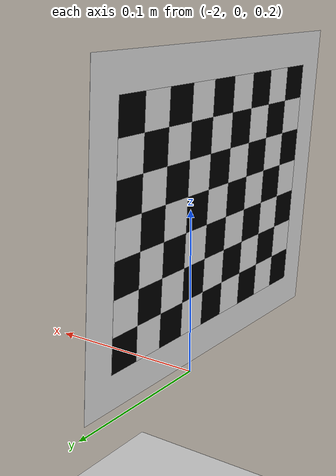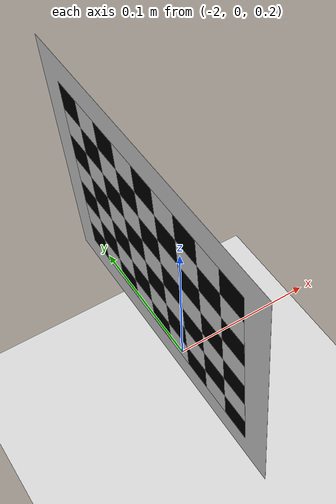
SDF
<sdf version="1.7">
 <world name="default">
  <plugin name="gazebo_ros_state" filename="libgazebo_ros_state.so">
   <ros><namespace>/gazebo</namespace></ros>
   <update_rate>1.0</update_rate>
  </plugin>
  <model name="ground_plane">
   <static>1</static>
   <link name="link">
    <collision name="collision">
     <geometry><plane><normal>0 0 1</normal><size>100 100</size></plane></geometry>
     <surface><friction><ode><mu>100</mu><mu2>50</mu2></ode></friction></surface>
    </collision>
    <visual name="visual">
     <cast_shadows>0</cast_shadows>
     <geometry><plane><normal>0 0 1</normal><size>100 100</size></plane></geometry>
     <material>
      <script><uri>file://media/materials/scripts/gazebo.material</uri><name>Gazebo/Grey</name></script>
     </material>
    </visual>
   </link>
  </model>
  <light name="sun" type="directional">
   <pose>0 0 10 0 -0 0</pose>
   <diffuse>0.8 0.8 0.8 1</diffuse>
   <specular>0.2 0.2 0.2 1</specular>
   <attenuation>
    <range>1000</range>
    <constant>0.9</constant>
    <linear>0.01</linear>
    <quadratic>0.001</quadratic>
   </attenuation>
   <direction>-0.5 0.1 -0.9</direction>
   <spot><inner_angle>0</inner_angle><outer_angle>0</outer_angle><falloff>0</falloff></spot>
  </light>
  <scene><shadows>0</shadows><ambient>0.4 0.4 0.4 1</ambient><background>0.7 0.7 0.7 1</background></scene>
  <physics type="ode">
   <real_time_update_rate>1000</real_time_update_rate>
   <max_step_size>0.001</max_step_size>
   <real_time_factor>1</real_time_factor>
   <ode>
    <solver>
     <type>quick</type>
     <iters>150</iters>
     <precon_iters>0</precon_iters>
     <sor>1.4</sor>
     <use_dynamic_moi_rescaling>1</use_dynamic_moi_rescaling>
    </solver>
    <constraints>
     <cfm>1e-05</cfm>
     <erp>0.2</erp>
     <contact_max_correcting_vel>2000</contact_max_correcting_vel>
     <contact_surface_layer>0.01</contact_surface_layer>
    </constraints>
   </ode>
  </physics>
  <gravity>0 0 -9.8</gravity>
  <magnetic_field>6e-06 2.3e-05 -4.2e-05</magnetic_field>
  <atmosphere type="adiabatic"/>
  <audio><device>default</device></audio>
  <spherical_coordinates>
   <surface_model>EARTH_WGS84</surface_model>
   <latitude_deg>0</latitude_deg>
   <longitude_deg>0</longitude_deg>
   <elevation>0</elevation>
   <heading_deg>0</heading_deg>
  </spherical_coordinates>
  <model name="checkerboard">
   <static>1</static>
   <link name="checkerboard_7_9_0_02_body">
    <visual name="checker_0_0">
     <pose>-0.06 -0.08 0 0 -0 0</pose>
     <geometry><box><size>0.02 0.02 0.0002</size></box></geometry>
     <material>
      <ambient>0 0 0 1</ambient>
      <diffuse>0 0 0 1</diffuse>
      <specular>0 0 0 1</specular>
      <emissive>0 0 0 1</emissive>
     </material>
    </visual>
    <visual name="checker_0_1">
     <pose>-0.06 -0.06 0 0 -0 0</pose>
     <geometry><box><size>0.02 0.02 0.0002</size></box></geometry>
     <material>
      <ambient>1 1 1 1</ambient>
      <diffuse>1 1 1 1</diffuse>
      <specular>1 1 1 1</specular>
      <emissive>1 1 1 1</emissive>
     </material>
    </visual>
    <visual name="checker_0_2">
     <pose>-0.06 -0.04 0 0 -0 0</pose>
     <geometry><box><size>0.02 0.02 0.0002</size></box></geometry>
     <material>
      <ambient>0 0 0 1</ambient>
      <diffuse>0 0 0 1</diffuse>
      <specular>0 0 0 1</specular>
      <emissive>0 0 0 1</emissive>
     </material>
    </visual>
    <visual name="checker_0_3">
     <pose>-0.06 -0.02 0 0 -0 0</pose>
     <geometry><box><size>0.02 0.02 0.0002</size></box></geometry>
     <material>
      <ambient>1 1 1 1</ambient>
      <diffuse>1 1 1 1</diffuse>
      <specular>1 1 1 1</specular>
      <emissive>1 1 1 1</emissive>
     </material>
    </visual>
    <visual name="checker_0_4">
     <pose>-0.06 0 0 0 -0 0</pose>
     <geometry><box><size>0.02 0.02 0.0002</size></box></geometry>
     <material>
      <ambient>0 0 0 1</ambient>
      <diffuse>0 0 0 1</diffuse>
      <specular>0 0 0 1</specular>
      <emissive>0 0 0 1</emissive>
     </material>
    </visual>
    <visual name="checker_0_5">
     <pose>-0.06 0.02 0 0 -0 0</pose>
     <geometry><box><size>0.02 0.02 0.0002</size></box></geometry>
     <material>
      <ambient>1 1 1 1</ambient>
      <diffuse>1 1 1 1</diffuse>
      <specular>1 1 1 1</specular>
      <emissive>1 1 1 1</emissive>
     </material>
    </visual>
    <visual name="checker_0_6">
     <pose>-0.06 0.04 0 0 -0 0</pose>
     <geometry><box><size>0.02 0.02 0.0002</size></box></geometry>
     <material>
      <ambient>0 0 0 1</ambient>
      <diffuse>0 0 0 1</diffuse>
      <specular>0 0 0 1</specular>
      <emissive>0 0 0 1</emissive>
     </material>
    </visual>
    <visual name="checker_0_7">
     <pose>-0.06 0.06 0 0 -0 0</pose>
     <geometry><box><size>0.02 0.02 0.0002</size></box></geometry>
     <material>
      <ambient>1 1 1 1</ambient>
      <diffuse>1 1 1 1</diffuse>
      <specular>1 1 1 1</specular>
      <emissive>1 1 1 1</emissive>
     </material>
    </visual>
    <visual name="checker_0_8">
     <pose>-0.06 0.08 0 0 -0 0</pose>
     <geometry><box><size>0.02 0.02 0.0002</size></box></geometry>
     <material>
      <ambient>0 0 0 1</ambient>
      <diffuse>0 0 0 1</diffuse>
      <specular>0 0 0 1</specular>
      <emissive>0 0 0 1</emissive>
     </material>
    </visual>
    <visual name="checker_1_0">
     <pose>-0.04 -0.08 0 0 -0 0</pose>
     <geometry><box><size>0.02 0.02 0.0002</size></box></geometry>
     <material>
      <ambient>1 1 1 1</ambient>
      <diffuse>1 1 1 1</diffuse>
      <specular>1 1 1 1</specular>
      <emissive>1 1 1 1</emissive>
     </material>
    </visual>
    <visual name="checker_1_1">
     <pose>-0.04 -0.06 0 0 -0 0</pose>
     <geometry><box><size>0.02 0.02 0.0002</size></box></geometry>
     <material>
      <ambient>0 0 0 1</ambient>
      <diffuse>0 0 0 1</diffuse>
      <specular>0 0 0 1</specular>
      <emissive>0 0 0 1</emissive>
     </material>
    </visual>
    <visual name="checker_1_2">
     <pose>-0.04 -0.04 0 0 -0 0</pose>
     <geometry><box><size>0.02 0.02 0.0002</size></box></geometry>
     <material>
      <ambient>1 1 1 1</ambient>
      <diffuse>1 1 1 1</diffuse>
      <specular>1 1 1 1</specular>
      <emissive>1 1 1 1</emissive>
     </material>
    </visual>
    <visual name="checker_1_3">
     <pose>-0.04 -0.02 0 0 -0 0</pose>
     <geometry><box><size>0.02 0.02 0.0002</size></box></geometry>
     <material>
      <ambient>0 0 0 1</ambient>
      <diffuse>0 0 0 1</diffuse>
      <specular>0 0 0 1</specular>
      <emissive>0 0 0 1</emissive>
     </material>
    </visual>
    <visual name="checker_1_4">
     <pose>-0.04 0 0 0 -0 0</pose>
     <geometry><box><size>0.02 0.02 0.0002</size></box></geometry>
     <material>
      <ambient>1 1 1 1</ambient>
      <diffuse>1 1 1 1</diffuse>
      <specular>1 1 1 1</specular>
      <emissive>1 1 1 1</emissive>
     </material>
    </visual>
    <visual name="checker_1_5">
     <pose>-0.04 0.02 0 0 -0 0</pose>
     <geometry><box><size>0.02 0.02 0.0002</size></box></geometry>
     <material>
      <ambient>0 0 0 1</ambient>
      <diffuse>0 0 0 1</diffuse>
      <specular>0 0 0 1</specular>
      <emissive>0 0 0 1</emissive>
     </material>
    </visual>
    <visual name="checker_1_6">
     <pose>-0.04 0.04 0 0 -0 0</pose>
     <geometry><box><size>0.02 0.02 0.0002</size></box></geometry>
     <material>
      <ambient>1 1 1 1</ambient>
      <diffuse>1 1 1 1</diffuse>
      <specular>1 1 1 1</specular>
      <emissive>1 1 1 1</emissive>
     </material>
    </visual>
    <visual name="checker_1_7">
     <pose>-0.04 0.06 0 0 -0 0</pose>
     <geometry><box><size>0.02 0.02 0.0002</size></box></geometry>
     <material>
      <ambient>0 0 0 1</ambient>
      <diffuse>0 0 0 1</diffuse>
      <specular>0 0 0 1</specular>
      <emissive>0 0 0 1</emissive>
     </material>
    </visual>
    <visual name="checker_1_8">
     <pose>-0.04 0.08 0 0 -0 0</pose>
     <geometry><box><size>0.02 0.02 0.0002</size></box></geometry>
     <material>
      <ambient>1 1 1 1</ambient>
      <diffuse>1 1 1 1</diffuse>
      <specular>1 1 1 1</specular>
      <emissive>1 1 1 1</emissive>
     </material>
    </visual>
    <visual name="checker_2_0">
     <pose>-0.02 -0.08 0 0 -0 0</pose>
     <geometry><box><size>0.02 0.02 0.0002</size></box></geometry>
     <material>
      <ambient>0 0 0 1</ambient>
      <diffuse>0 0 0 1</diffuse>
      <specular>0 0 0 1</specular>
      <emissive>0 0 0 1</emissive>
     </material>
    </visual>
    <visual name="checker_2_1">
     <pose>-0.02 -0.06 0 0 -0 0</pose>
     <geometry><box><size>0.02 0.02 0.0002</size></box></geometry>
     <material>
      <ambient>1 1 1 1</ambient>
      <diffuse>1 1 1 1</diffuse>
      <specular>1 1 1 1</specular>
      <emissive>1 1 1 1</emissive>
     </material>
    </visual>
    <visual name="checker_2_2">
     <pose>-0.02 -0.04 0 0 -0 0</pose>
     <geometry><box><size>0.02 0.02 0.0002</size></box></geometry>
     <material>
      <ambient>0 0 0 1</ambient>
      <diffuse>0 0 0 1</diffuse>
      <specular>0 0 0 1</specular>
      <emissive>0 0 0 1</emissive>
     </material>
    </visual>
    <visual name="checker_2_3">
     <pose>-0.02 -0.02 0 0 -0 0</pose>
     <geometry><box><size>0.02 0.02 0.0002</size></box></geometry>
     <material>
      <ambient>1 1 1 1</ambient>
      <diffuse>1 1 1 1</diffuse>
      <specular>1 1 1 1</specular>
      <emissive>1 1 1 1</emissive>
     </material>
    </visual>
    <visual name="checker_2_4">
     <pose>-0.02 0 0 0 -0 0</pose>
     <geometry><box><size>0.02 0.02 0.0002</size></box></geometry>
     <material>
      <ambient>0 0 0 1</ambient>
      <diffuse>0 0 0 1</diffuse>
      <specular>0 0 0 1</specular>
      <emissive>0 0 0 1</emissive>
     </material>
    </visual>
    <visual name="checker_2_5">
     <pose>-0.02 0.02 0 0 -0 0</pose>
     <geometry><box><size>0.02 0.02 0.0002</size></box></geometry>
     <material>
      <ambient>1 1 1 1</ambient>
      <diffuse>1 1 1 1</diffuse>
      <specular>1 1 1 1</specular>
      <emissive>1 1 1 1</emissive>
     </material>
    </visual>
    <visual name="checker_2_6">
     <pose>-0.02 0.04 0 0 -0 0</pose>
     <geometry><box><size>0.02 0.02 0.0002</size></box></geometry>
     <material>
      <ambient>0 0 0 1</ambient>
      <diffuse>0 0 0 1</diffuse>
      <specular>0 0 0 1</specular>
      <emissive>0 0 0 1</emissive>
     </material>
    </visual>
    <visual name="checker_2_7">
     <pose>-0.02 0.06 0 0 -0 0</pose>
     <geometry><box><size>0.02 0.02 0.0002</size></box></geometry>
     <material>
      <ambient>1 1 1 1</ambient>
      <diffuse>1 1 1 1</diffuse>
      <specular>1 1 1 1</specular>
      <emissive>1 1 1 1</emissive>
     </material>
    </visual>
    <visual name="checker_2_8">
     <pose>-0.02 0.08 0 0 -0 0</pose>
     <geometry><box><size>0.02 0.02 0.0002</size></box></geometry>
     <material>
      <ambient>0 0 0 1</ambient>
      <diffuse>0 0 0 1</diffuse>
      <specular>0 0 0 1</specular>
      <emissive>0 0 0 1</emissive>
     </material>
    </visual>
    <visual name="checker_3_0">
     <pose>-0 -0.08 0 0 -0 0</pose>
     <geometry><box><size>0.02 0.02 0.0002</size></box></geometry>
     <material>
      <ambient>1 1 1 1</ambient>
      <diffuse>1 1 1 1</diffuse>
      <specular>1 1 1 1</specular>
      <emissive>1 1 1 1</emissive>
     </material>
    </visual>
    <visual name="checker_3_1">
     <pose>-0 -0.06 0 0 -0 0</pose>
     <geometry><box><size>0.02 0.02 0.0002</size></box></geometry>
     <material>
      <ambient>0 0 0 1</ambient>
      <diffuse>0 0 0 1</diffuse>
      <specular>0 0 0 1</specular>
      <emissive>0 0 0 1</emissive>
     </material>
    </visual>
    <visual name="checker_3_2">
     <pose>-0 -0.04 0 0 -0 0</pose>
     <geometry><box><size>0.02 0.02 0.0002</size></box></geometry>
     <material>
      <ambient>1 1 1 1</ambient>
      <diffuse>1 1 1 1</diffuse>
      <specular>1 1 1 1</specular>
      <emissive>1 1 1 1</emissive>
     </material>
    </visual>
    <visual name="checker_3_3">
     <pose>-0 -0.02 0 0 -0 0</pose>
     <geometry><box><size>0.02 0.02 0.0002</size></box></geometry>
     <material>
      <ambient>0 0 0 1</ambient>
      <diffuse>0 0 0 1</diffuse>
      <specular>0 0 0 1</specular>
      <emissive>0 0 0 1</emissive>
     </material>
    </visual>
    <visual name="checker_3_4">
     <geometry><box><size>0.02 0.02 0.0002</size></box></geometry>
     <material>
      <ambient>1 1 1 1</ambient>
      <diffuse>1 1 1 1</diffuse>
      <specular>1 1 1 1</specular>
      <emissive>1 1 1 1</emissive>
     </material>
    </visual>
    <visual name="checker_3_5">
     <pose>-0 0.02 0 0 -0 0</pose>
     <geometry><box><size>0.02 0.02 0.0002</size></box></geometry>
     <material>
      <ambient>0 0 0 1</ambient>
      <diffuse>0 0 0 1</diffuse>
      <specular>0 0 0 1</specular>
      <emissive>0 0 0 1</emissive>
     </material>
    </visual>
    <visual name="checker_3_6">
     <pose>-0 0.04 0 0 -0 0</pose>
     <geometry><box><size>0.02 0.02 0.0002</size></box></geometry>
     <material>
      <ambient>1 1 1 1</ambient>
      <diffuse>1 1 1 1</diffuse>
      <specular>1 1 1 1</specular>
      <emissive>1 1 1 1</emissive>
     </material>
    </visual>
    <visual name="checker_3_7">
     <pose>-0 0.06 0 0 -0 0</pose>
     <geometry><box><size>0.02 0.02 0.0002</size></box></geometry>
     <material>
      <ambient>0 0 0 1</ambient>
      <diffuse>0 0 0 1</diffuse>
      <specular>0 0 0 1</specular>
      <emissive>0 0 0 1</emissive>
     </material>
    </visual>
    <visual name="checker_3_8">
     <pose>-0 0.08 0 0 -0 0</pose>
     <geometry><box><size>0.02 0.02 0.0002</size></box></geometry>
     <material>
      <ambient>1 1 1 1</ambient>
      <diffuse>1 1 1 1</diffuse>
      <specular>1 1 1 1</specular>
      <emissive>1 1 1 1</emissive>
     </material>
    </visual>
    <visual name="checker_4_0">
     <pose>0.02 -0.08 0 0 -0 0</pose>
     <geometry><box><size>0.02 0.02 0.0002</size></box></geometry>
     <material>
      <ambient>0 0 0 1</ambient>
      <diffuse>0 0 0 1</diffuse>
      <specular>0 0 0 1</specular>
      <emissive>0 0 0 1</emissive>
     </material>
    </visual>
    <visual name="checker_4_1">
     <pose>0.02 -0.06 0 0 -0 0</pose>
     <geometry><box><size>0.02 0.02 0.0002</size></box></geometry>
     <material>
      <ambient>1 1 1 1</ambient>
      <diffuse>1 1 1 1</diffuse>
      <specular>1 1 1 1</specular>
      <emissive>1 1 1 1</emissive>
     </material>
    </visual>
    <visual name="checker_4_2">
     <pose>0.02 -0.04 0 0 -0 0</pose>
     <geometry><box><size>0.02 0.02 0.0002</size></box></geometry>
     <material>
      <ambient>0 0 0 1</ambient>
      <diffuse>0 0 0 1</diffuse>
      <specular>0 0 0 1</specular>
      <emissive>0 0 0 1</emissive>
     </material>
    </visual>
    <visual name="checker_4_3">
     <pose>0.02 -0.02 0 0 -0 0</pose>
     <geometry><box><size>0.02 0.02 0.0002</size></box></geometry>
     <material>
      <ambient>1 1 1 1</ambient>
      <diffuse>1 1 1 1</diffuse>
      <specular>1 1 1 1</specular>
      <emissive>1 1 1 1</emissive>
     </material>
    </visual>
    <visual name="checker_4_4">
     <pose>0.02 0 0 0 -0 0</pose>
     <geometry><box><size>0.02 0.02 0.0002</size></box></geometry>
     <material>
      <ambient>0 0 0 1</ambient>
      <diffuse>0 0 0 1</diffuse>
      <specular>0 0 0 1</specular>
      <emissive>0 0 0 1</emissive>
     </material>
    </visual>
    <visual name="checker_4_5">
     <pose>0.02 0.02 0 0 -0 0</pose>
     <geometry><box><size>0.02 0.02 0.0002</size></box></geometry>
     <material>
      <ambient>1 1 1 1</ambient>
      <diffuse>1 1 1 1</diffuse>
      <specular>1 1 1 1</specular>
      <emissive>1 1 1 1</emissive>
     </material>
    </visual>
    <visual name="checker_4_6">
     <pose>0.02 0.04 0 0 -0 0</pose>
     <geometry><box><size>0.02 0.02 0.0002</size></box></geometry>
     <material>
      <ambient>0 0 0 1</ambient>
      <diffuse>0 0 0 1</diffuse>
      <specular>0 0 0 1</specular>
      <emissive>0 0 0 1</emissive>
     </material>
    </visual>
    <visual name="checker_4_7">
     <pose>0.02 0.06 0 0 -0 0</pose>
     <geometry><box><size>0.02 0.02 0.0002</size></box></geometry>
     <material>
      <ambient>1 1 1 1</ambient>
      <diffuse>1 1 1 1</diffuse>
      <specular>1 1 1 1</specular>
      <emissive>1 1 1 1</emissive>
     </material>
    </visual>
    <visual name="checker_4_8">
     <pose>0.02 0.08 0 0 -0 0</pose>
     <geometry><box><size>0.02 0.02 0.0002</size></box></geometry>
     <material>
      <ambient>0 0 0 1</ambient>
      <diffuse>0 0 0 1</diffuse>
      <specular>0 0 0 1</specular>
      <emissive>0 0 0 1</emissive>
     </material>
    </visual>
    <visual name="checker_5_0">
     <pose>0.04 -0.08 0 0 -0 0</pose>
     <geometry><box><size>0.02 0.02 0.0002</size></box></geometry>
     <material>
      <ambient>1 1 1 1</ambient>
      <diffuse>1 1 1 1</diffuse>
      <specular>1 1 1 1</specular>
      <emissive>1 1 1 1</emissive>
     </material>
    </visual>
    <visual name="checker_5_1">
     <pose>0.04 -0.06 0 0 -0 0</pose>
     <geometry><box><size>0.02 0.02 0.0002</size></box></geometry>
     <material>
      <ambient>0 0 0 1</ambient>
      <diffuse>0 0 0 1</diffuse>
      <specular>0 0 0 1</specular>
      <emissive>0 0 0 1</emissive>
     </material>
    </visual>
    <visual name="checker_5_2">
     <pose>0.04 -0.04 0 0 -0 0</pose>
     <geometry><box><size>0.02 0.02 0.0002</size></box></geometry>
     <material>
      <ambient>1 1 1 1</ambient>
      <diffuse>1 1 1 1</diffuse>
      <specular>1 1 1 1</specular>
      <emissive>1 1 1 1</emissive>
     </material>
    </visual>
    <visual name="checker_5_3">
     <pose>0.04 -0.02 0 0 -0 0</pose>
     <geometry><box><size>0.02 0.02 0.0002</size></box></geometry>
     <material>
      <ambient>0 0 0 1</ambient>
      <diffuse>0 0 0 1</diffuse>
      <specular>0 0 0 1</specular>
      <emissive>0 0 0 1</emissive>
     </material>
    </visual>
    <visual name="checker_5_4">
     <pose>0.04 0 0 0 -0 0</pose>
     <geometry><box><size>0.02 0.02 0.0002</size></box></geometry>
     <material>
      <ambient>1 1 1 1</ambient>
      <diffuse>1 1 1 1</diffuse>
      <specular>1 1 1 1</specular>
      <emissive>1 1 1 1</emissive>
     </material>
    </visual>
    <visual name="checker_5_5">
     <pose>0.04 0.02 0 0 -0 0</pose>
     <geometry><box><size>0.02 0.02 0.0002</size></box></geometry>
     <material>
      <ambient>0 0 0 1</ambient>
      <diffuse>0 0 0 1</diffuse>
      <specular>0 0 0 1</specular>
      <emissive>0 0 0 1</emissive>
     </material>
    </visual>
    <visual name="checker_5_6">
     <pose>0.04 0.04 0 0 -0 0</pose>
     <geometry><box><size>0.02 0.02 0.0002</size></box></geometry>
     <material>
      <ambient>1 1 1 1</ambient>
      <diffuse>1 1 1 1</diffuse>
      <specular>1 1 1 1</specular>
      <emissive>1 1 1 1</emissive>
     </material>
    </visual>
    <visual name="checker_5_7">
     <pose>0.04 0.06 0 0 -0 0</pose>
     <geometry><box><size>0.02 0.02 0.0002</size></box></geometry>
     <material>
      <ambient>0 0 0 1</ambient>
      <diffuse>0 0 0 1</diffuse>
      <specular>0 0 0 1</specular>
      <emissive>0 0 0 1</emissive>
     </material>
    </visual>
    <visual name="checker_5_8">
     <pose>0.04 0.08 0 0 -0 0</pose>
     <geometry><box><size>0.02 0.02 0.0002</size></box></geometry>
     <material>
      <ambient>1 1 1 1</ambient>
      <diffuse>1 1 1 1</diffuse>
      <specular>1 1 1 1</specular>
      <emissive>1 1 1 1</emissive>
     </material>
    </visual>
    <visual name="checker_6_0">
     <pose>0.06 -0.08 0 0 -0 0</pose>
     <geometry><box><size>0.02 0.02 0.0002</size></box></geometry>
     <material>
      <ambient>0 0 0 1</ambient>
      <diffuse>0 0 0 1</diffuse>
      <specular>0 0 0 1</specular>
      <emissive>0 0 0 1</emissive>
     </material>
    </visual>
    <visual name="checker_6_1">
     <pose>0.06 -0.06 0 0 -0 0</pose>
     <geometry><box><size>0.02 0.02 0.0002</size></box></geometry>
     <material>
      <ambient>1 1 1 1</ambient>
      <diffuse>1 1 1 1</diffuse>
      <specular>1 1 1 1</specular>
      <emissive>1 1 1 1</emissive>
     </material>
    </visual>
    <visual name="checker_6_2">
     <pose>0.06 -0.04 0 0 -0 0</pose>
     <geometry><box><size>0.02 0.02 0.0002</size></box></geometry>
     <material>
      <ambient>0 0 0 1</ambient>
      <diffuse>0 0 0 1</diffuse>
      <specular>0 0 0 1</specular>
      <emissive>0 0 0 1</emissive>
     </material>
    </visual>
    <visual name="checker_6_3">
     <pose>0.06 -0.02 0 0 -0 0</pose>
     <geometry><box><size>0.02 0.02 0.0002</size></box></geometry>
     <material>
      <ambient>1 1 1 1</ambient>
      <diffuse>1 1 1 1</diffuse>
      <specular>1 1 1 1</specular>
      <emissive>1 1 1 1</emissive>
     </material>
    </visual>
    <visual name="checker_6_4">
     <pose>0.06 0 0 0 -0 0</pose>
     <geometry><box><size>0.02 0.02 0.0002</size></box></geometry>
     <material>
      <ambient>0 0 0 1</ambient>
      <diffuse>0 0 0 1</diffuse>
      <specular>0 0 0 1</specular>
      <emissive>0 0 0 1</emissive>
     </material>
    </visual>
    <visual name="checker_6_5">
     <pose>0.06 0.02 0 0 -0 0</pose>
     <geometry><box><size>0.02 0.02 0.0002</size></box></geometry>
     <material>
      <ambient>1 1 1 1</ambient>
      <diffuse>1 1 1 1</diffuse>
      <specular>1 1 1 1</specular>
      <emissive>1 1 1 1</emissive>
     </material>
    </visual>
    <visual name="checker_6_6">
     <pose>0.06 0.04 0 0 -0 0</pose>
     <geometry><box><size>0.02 0.02 0.0002</size></box></geometry>
     <material>
      <ambient>0 0 0 1</ambient>
      <diffuse>0 0 0 1</diffuse>
      <specular>0 0 0 1</specular>
      <emissive>0 0 0 1</emissive>
     </material>
    </visual>
    <visual name="checker_6_7">
     <pose>0.06 0.06 0 0 -0 0</pose>
     <geometry><box><size>0.02 0.02 0.0002</size></box></geometry>
     <material>
      <ambient>1 1 1 1</ambient>
      <diffuse>1 1 1 1</diffuse>
      <specular>1 1 1 1</specular>
      <emissive>1 1 1 1</emissive>
     </material>
    </visual>
    <visual name="checker_6_8">
     <pose>0.06 0.08 0 0 -0 0</pose>
     <geometry><box><size>0.02 0.02 0.0002</size></box></geometry>
     <material>
      <ambient>0 0 0 1</ambient>
      <diffuse>0 0 0 1</diffuse>
      <specular>0 0 0 1</specular>
      <emissive>0 0 0 1</emissive>
     </material>
    </visual>
    <visual name="checker_backdrop">
     <geometry><box><size>0.18 0.22 0.0001</size></box></geometry>
     <material>
      <ambient>1 1 1 1</ambient>
      <diffuse>1 1 1 1</diffuse>
      <specular>1 1 1 1</specular>
      <emissive>1 1 1 1</emissive>
     </material>
    </visual>
   </link>
   <pose>-2.01787 0 0.306633 0 1.51259 0</pose>
  </model>
 </world>
</sdf>
